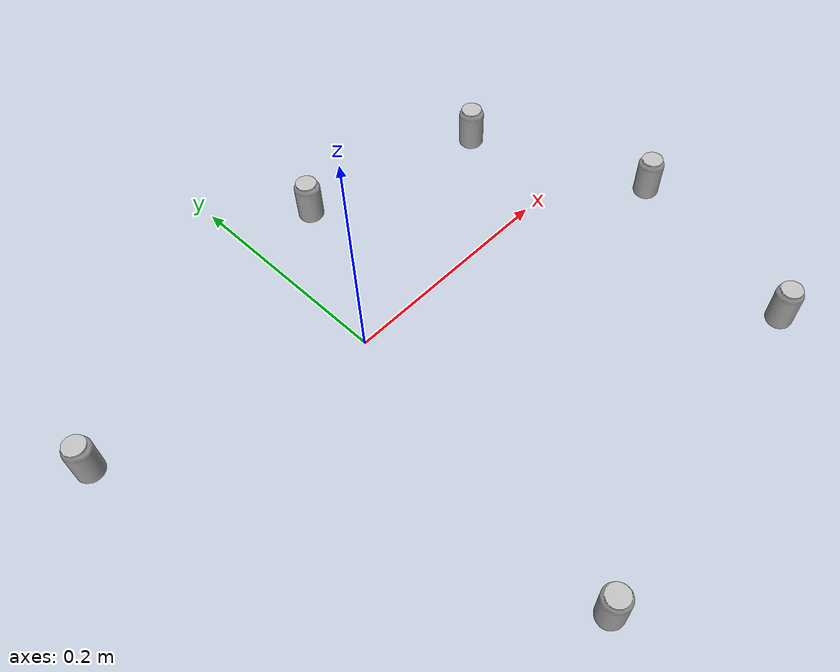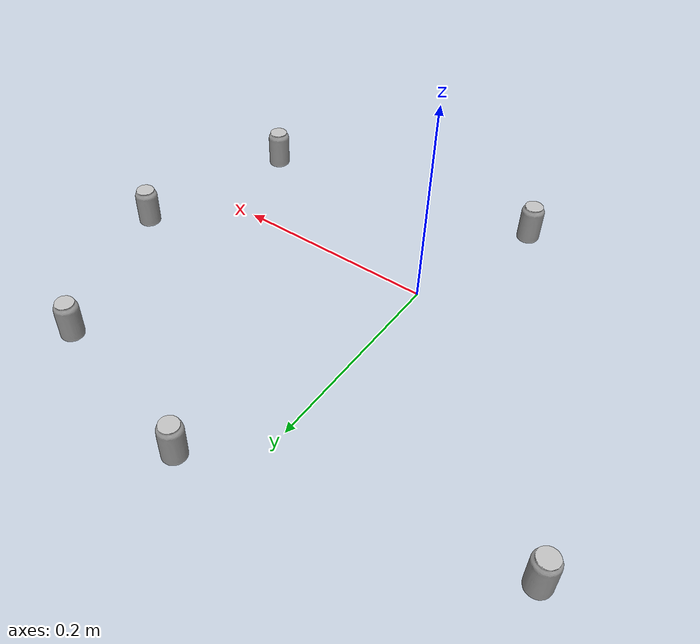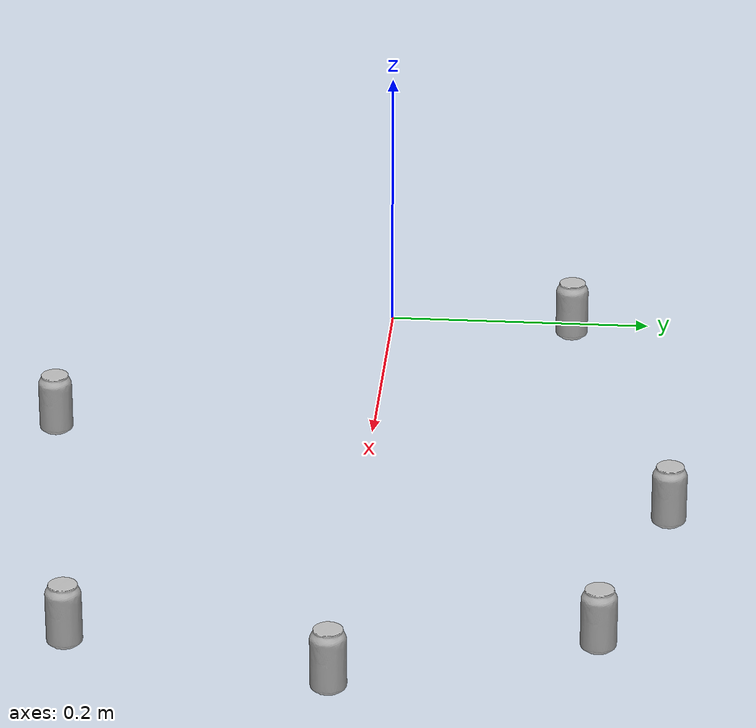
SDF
<sdf version="1.4">
 <world name="default">
  <light name="sun" type="directional">
   <pose>0 0 10 0 -0 0</pose>
   <diffuse>0.8 0.8 0.8 1</diffuse>
   <specular>0.2 0.2 0.2 1</specular>
   <attenuation>
    <range>1000</range>
    <constant>0.9</constant>
    <linear>0.01</linear>
    <quadratic>0.001</quadratic>
   </attenuation>
   <direction>-0.5 0.1 -0.9</direction>
  </light>
  <model name="ground_plane">
   <static>1</static>
   <link name="link">
    <collision name="collision">
     <geometry><plane><normal>0 0 1</normal><size>100 100</size></plane></geometry>
     <surface><friction><ode><mu>100</mu><mu2>50</mu2></ode></friction></surface>
    </collision>
    <visual name="visual">
     <cast_shadows>0</cast_shadows>
     <geometry><plane><normal>0 0 1</normal><size>100 100</size></plane></geometry>
     <material>
      <script><uri>file://media/materials/scripts/gazebo.material</uri><name>Gazebo/Grey</name></script>
     </material>
    </visual>
    <velocity_decay><linear>0</linear><angular>0</angular></velocity_decay>
   </link>
  </model>
  <physics type="ode">
   <max_step_size>0.001</max_step_size>
   <real_time_factor>1</real_time_factor>
   <real_time_update_rate>1000</real_time_update_rate>
   <gravity>0 0 -9.8</gravity>
  </physics>
  <scene><ambient>0.4 0.4 0.4 1</ambient><background>0.7 0.7 0.7 1</background><shadows>1</shadows></scene>
  <spherical_coordinates>
   <surface_model>EARTH_WGS84</surface_model>
   <latitude_deg>0</latitude_deg>
   <longitude_deg>0</longitude_deg>
   <elevation>0</elevation>
   <heading_deg>0</heading_deg>
  </spherical_coordinates>
  <model name="coke_can">
   <static>1</static>
   <link name="link">
    <inertial>
     <pose>-0.01 -0.012 0.15 0 -0 0</pose>
     <mass>0.39</mass>
     <inertia><ixx>0.00058</ixx><ixy>0</ixy><ixz>0</ixz><iyy>0.00058</iyy><iyz>0</iyz><izz>0.00019</izz></inertia>
    </inertial>
    <collision name="collision">
     <pose>0 0 -0.183 0 -0 0</pose>
     <geometry>
      <mesh><uri>model://coke_can/meshes/coke_can.dae</uri><scale>0.398 0.398 0.398</scale></mesh>
     </geometry>
     <surface>
      <friction><ode><mu>1</mu><mu2>1</mu2></ode></friction>
      <contact><ode><kp>1e+07</kp><kd>1</kd><min_depth>0.001</min_depth><max_vel>0.1</max_vel></ode></contact>
     </surface>
    </collision>
    <visual name="visual">
     <pose>0 0 -0.183 0 -0 0</pose>
     <geometry>
      <mesh><uri>model://coke_can/meshes/coke_can.dae</uri><scale>0.398 0.398 0.398</scale></mesh>
     </geometry>
    </visual>
    <velocity_decay><linear>0</linear><angular>0</angular></velocity_decay>
   </link>
   <pose>0.391789 -0.014424 0 0 -0 0</pose>
  </model>
  <model name="coke_can_0">
   <static>1</static>
   <link name="link">
    <inertial>
     <pose>-0.01 -0.012 0.15 0 -0 0</pose>
     <mass>0.39</mass>
     <inertia><ixx>0.00058</ixx><ixy>0</ixy><ixz>0</ixz><iyy>0.00058</iyy><iyz>0</iyz><izz>0.00019</izz></inertia>
    </inertial>
    <collision name="collision">
     <pose>0 0 -0.183 0 -0 0</pose>
     <geometry>
      <mesh><uri>model://coke_can/meshes/coke_can.dae</uri><scale>0.398 0.398 0.398</scale></mesh>
     </geometry>
     <surface>
      <friction><ode><mu>1</mu><mu2>1</mu2></ode></friction>
      <contact><ode><kp>1e+07</kp><kd>1</kd><min_depth>0.001</min_depth><max_vel>0.1</max_vel></ode></contact>
     </surface>
    </collision>
    <visual name="visual">
     <pose>0 0 -0.183 0 -0 0</pose>
     <geometry>
      <mesh><uri>model://coke_can/meshes/coke_can.dae</uri><scale>0.398 0.398 0.398</scale></mesh>
     </geometry>
    </visual>
    <velocity_decay><linear>0</linear><angular>0</angular></velocity_decay>
   </link>
   <pose>0.318456 0.175071 0 0 -0 0</pose>
  </model>
  <model name="coke_can_2">
   <static>1</static>
   <link name="link">
    <inertial>
     <pose>-0.01 -0.012 0.15 0 -0 0</pose>
     <mass>0.39</mass>
     <inertia><ixx>0.00058</ixx><ixy>0</ixy><ixz>0</ixz><iyy>0.00058</iyy><iyz>0</iyz><izz>0.00019</izz></inertia>
    </inertial>
    <collision name="collision">
     <pose>0 0 -0.183 0 -0 0</pose>
     <geometry>
      <mesh><uri>model://coke_can/meshes/coke_can.dae</uri><scale>0.398 0.398 0.398</scale></mesh>
     </geometry>
     <surface>
      <friction><ode><mu>1</mu><mu2>1</mu2></ode></friction>
      <contact><ode><kp>1e+07</kp><kd>1</kd><min_depth>0.001</min_depth><max_vel>0.1</max_vel></ode></contact>
     </surface>
    </collision>
    <visual name="visual">
     <pose>0 0 -0.183 0 -0 0</pose>
     <geometry>
      <mesh><uri>model://coke_can/meshes/coke_can.dae</uri><scale>0.398 0.398 0.398</scale></mesh>
     </geometry>
    </visual>
    <velocity_decay><linear>0</linear><angular>0</angular></velocity_decay>
   </link>
   <pose>0 -0.267796 0 0 -0 0</pose>
  </model>
  <model name="coke_can_3">
   <static>1</static>
   <link name="link">
    <inertial>
     <pose>-0.01 -0.012 0.15 0 -0 0</pose>
     <mass>0.39</mass>
     <inertia><ixx>0.00058</ixx><ixy>0</ixy><ixz>0</ixz><iyy>0.00058</iyy><iyz>0</iyz><izz>0.00019</izz></inertia>
    </inertial>
    <collision name="collision">
     <pose>0 0 -0.183 0 -0 0</pose>
     <geometry>
      <mesh><uri>model://coke_can/meshes/coke_can.dae</uri><scale>0.398 0.398 0.398</scale></mesh>
     </geometry>
     <surface>
      <friction><ode><mu>1</mu><mu2>1</mu2></ode></friction>
      <contact><ode><kp>1e+07</kp><kd>1</kd><min_depth>0.001</min_depth><max_vel>0.1</max_vel></ode></contact>
     </surface>
    </collision>
    <visual name="visual">
     <pose>0 0 -0.183 0 -0 0</pose>
     <geometry>
      <mesh><uri>model://coke_can/meshes/coke_can.dae</uri><scale>0.398 0.398 0.398</scale></mesh>
     </geometry>
    </visual>
    <velocity_decay><linear>0</linear><angular>0</angular></velocity_decay>
   </link>
   <pose>-0.209624 0.137688 0 0 -0 0</pose>
  </model>
  <model name="coke_can_4">
   <static>1</static>
   <link name="link">
    <inertial>
     <pose>-0.01 -0.012 0.15 0 -0 0</pose>
     <mass>0.39</mass>
     <inertia><ixx>0.00058</ixx><ixy>0</ixy><ixz>0</ixz><iyy>0.00058</iyy><iyz>0</iyz><izz>0.00019</izz></inertia>
    </inertial>
    <collision name="collision">
     <pose>0 0 -0.183 0 -0 0</pose>
     <geometry>
      <mesh><uri>model://coke_can/meshes/coke_can.dae</uri><scale>0.398 0.398 0.398</scale></mesh>
     </geometry>
     <surface>
      <friction><ode><mu>1</mu><mu2>1</mu2></ode></friction>
      <contact><ode><kp>1e+07</kp><kd>1</kd><min_depth>0.001</min_depth><max_vel>0.1</max_vel></ode></contact>
     </surface>
    </collision>
    <visual name="visual">
     <pose>0 0 -0.183 0 -0 0</pose>
     <geometry>
      <mesh><uri>model://coke_can/meshes/coke_can.dae</uri><scale>0.398 0.398 0.398</scale></mesh>
     </geometry>
    </visual>
    <velocity_decay><linear>0</linear><angular>0</angular></velocity_decay>
   </link>
   <pose>0.120965 0.223288 0 0 -0 0</pose>
  </model>
  <model name="coke_can_5">
   <static>1</static>
   <link name="link">
    <inertial>
     <pose>-0.01 -0.012 0.15 0 -0 0</pose>
     <mass>0.39</mass>
     <inertia><ixx>0.00058</ixx><ixy>0</ixy><ixz>0</ixz><iyy>0.00058</iyy><iyz>0</iyz><izz>0.00019</izz></inertia>
    </inertial>
    <collision name="collision">
     <pose>0 0 -0.183 0 -0 0</pose>
     <geometry>
      <mesh><uri>model://coke_can/meshes/coke_can.dae</uri><scale>0.398 0.398 0.398</scale></mesh>
     </geometry>
     <surface>
      <friction><ode><mu>1</mu><mu2>1</mu2></ode></friction>
      <contact><ode><kp>1e+07</kp><kd>1</kd><min_depth>0.001</min_depth><max_vel>0.1</max_vel></ode></contact>
     </surface>
    </collision>
    <visual name="visual">
     <pose>0 0 -0.183 0 -0 0</pose>
     <geometry>
      <mesh><uri>model://coke_can/meshes/coke_can.dae</uri><scale>0.398 0.398 0.398</scale></mesh>
     </geometry>
    </visual>
    <velocity_decay><linear>0</linear><angular>0</angular></velocity_decay>
   </link>
   <pose>0.341948 -0.210761 0 0 -0 0</pose>
  </model>
 </world>
</sdf>
